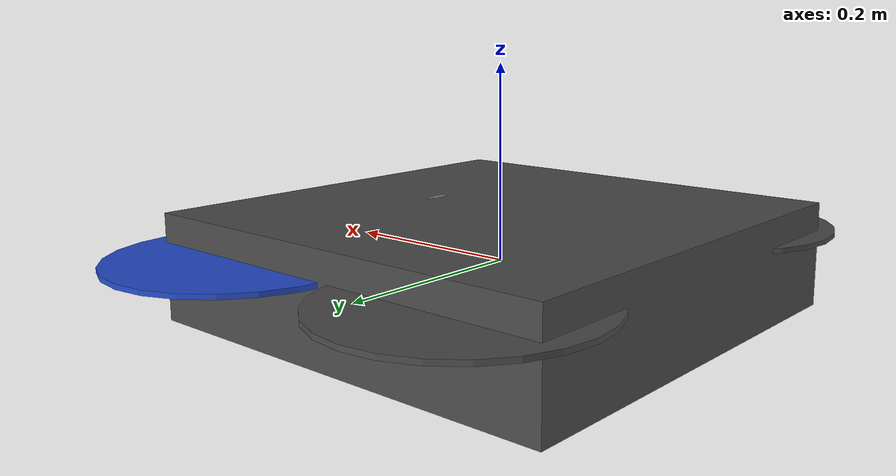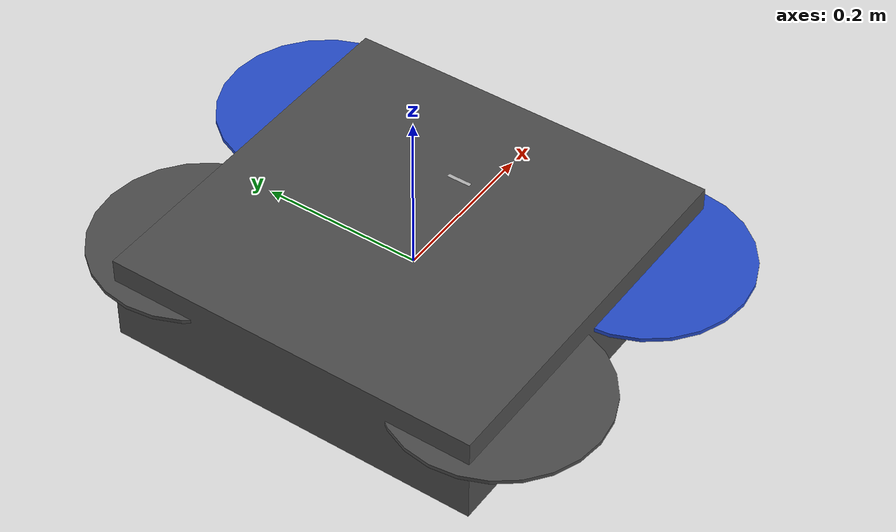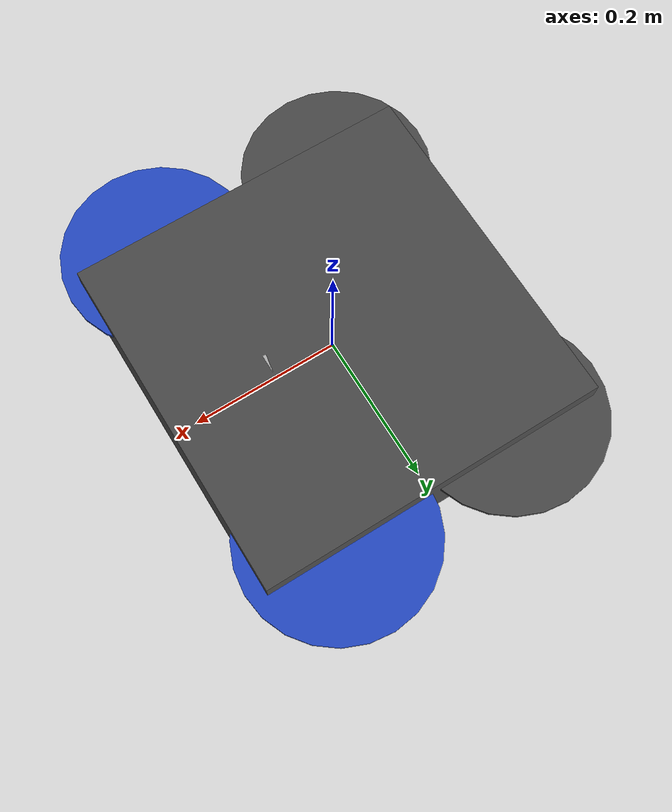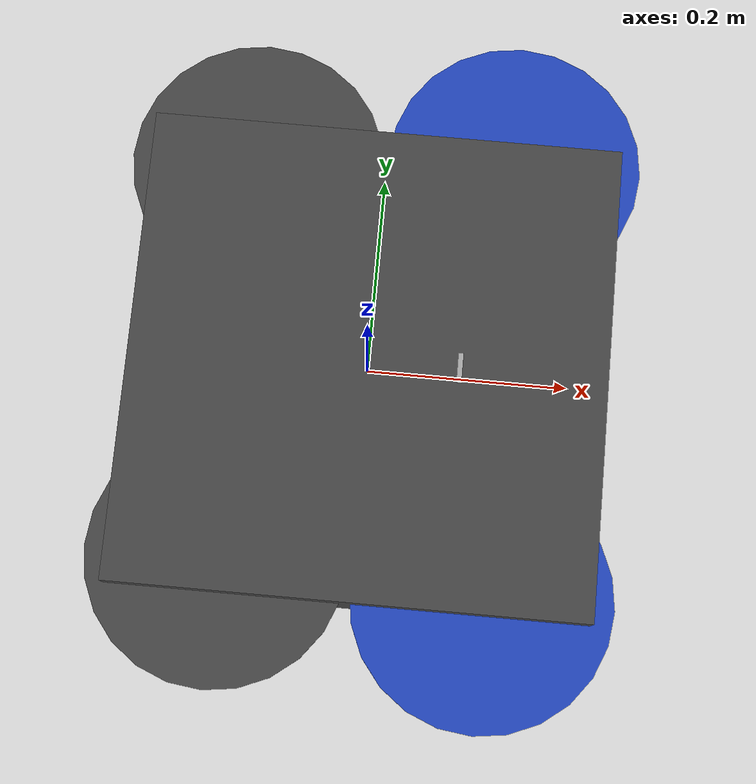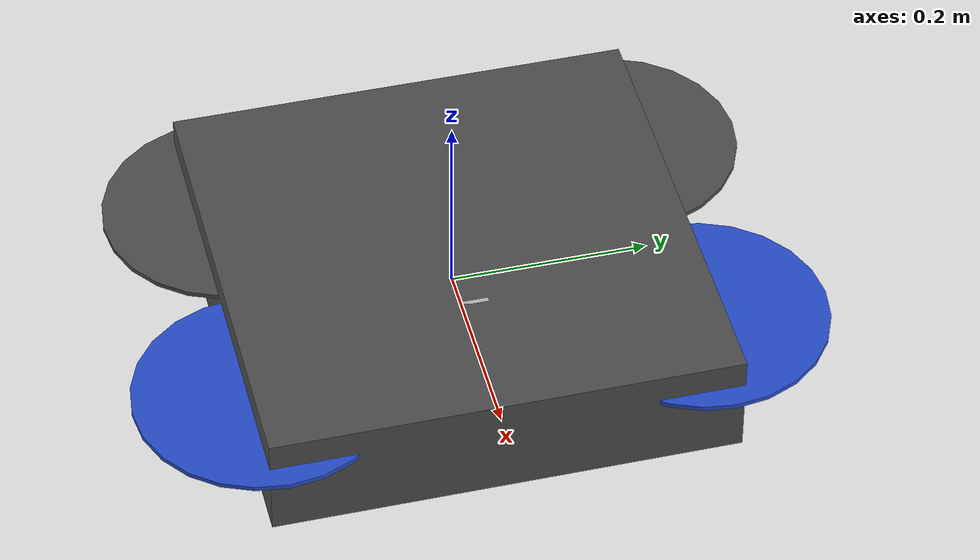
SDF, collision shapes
<sdf version='1.6'>
  <model name='iris'>
    <link name='base_link'>
      <pose frame=''>0 0 0 0 -0 0</pose>
      <inertial>
        <pose frame=''>0 0 0 0 -0 0</pose>
        <mass>1.5</mass>
        <inertia>
          <ixx>0.0347563</ixx>
          <ixy>0</ixy>
          <ixz>0</ixz>
          <iyy>0.0458929</iyy>
          <iyz>0</iyz>
          <izz>0.0977</izz>
        </inertia>
      </inertial>
      <collision name='base_link_inertia_collision'>
        <pose frame=''>0 0 0 0 -0 0</pose>
        <geometry>
          <box>
            <size>0.47 0.47 0.11</size>
          </box>
        </geometry>
        <surface>
          <contact>
            <ode>
              <min_depth>0.001</min_depth>
              <max_vel>0</max_vel>
            </ode>
          </contact>
          <friction>
            <ode/>
          </friction>
        </surface>
      </collision>
      <visual name='base_link_inertia_visual'>
        <pose frame=''>0 0 0 0 -0 0</pose>
        <geometry>
          <mesh>
            <scale>1 1 1</scale>
            <uri>model://rotors_description/meshes/iris.stl</uri>
          </mesh>
        </geometry>
        <material>
          <script>
            <name>Gazebo/DarkGrey</name>
            <uri>file://media/materials/scripts/gazebo.material</uri>
          </script>
        </material>
      </visual>
      <gravity>1</gravity>
      <velocity_decay/>
    </link>
    <link name='/imu_link'>
      <pose frame=''>0 0 0 0 -0 0</pose>
      <inertial>
        <pose frame=''>0 0 0 0 -0 0</pose>
        <mass>0.015</mass>
        <inertia>
          <ixx>1e-05</ixx>
          <ixy>0</ixy>
          <ixz>0</ixz>
          <iyy>1e-05</iyy>
          <iyz>0</iyz>
          <izz>1e-05</izz>
        </inertia>
      </inertial>
    </link>
    <joint name='/imu_joint' type='revolute'>
      <child>/imu_link</child>
      <parent>base_link</parent>
      <axis>
        <xyz>1 0 0</xyz>
        <limit>
          <lower>0</lower>
          <upper>0</upper>
          <effort>0</effort>
          <velocity>0</velocity>
        </limit>
        <dynamics>
          <spring_reference>0</spring_reference>
          <spring_stiffness>0</spring_stiffness>
        </dynamics>
        <use_parent_model_frame>1</use_parent_model_frame>
      </axis>
    </joint>
    <link name='rotor_0'>
      <pose frame=''>0.13 -0.22 0.023 0 -0 0</pose>
      <inertial>
        <pose frame=''>0 0 0 0 -0 0</pose>
        <mass>0.005</mass>
        <inertia>
          <ixx>9.75e-07</ixx>
          <ixy>0</ixy>
          <ixz>0</ixz>
          <iyy>0.000273104</iyy>
          <iyz>0</iyz>
          <izz>0.000274004</izz>
        </inertia>
      </inertial>
      <collision name='rotor_0_collision'>
        <pose frame=''>0 0 0 0 -0 0</pose>
        <geometry>
          <cylinder>
            <length>0.005</length>
            <radius>0.128</radius>
          </cylinder>
        </geometry>
        <surface>
          <contact>
            <ode/>
          </contact>
          <friction>
            <ode/>
          </friction>
        </surface>
      </collision>
      <visual name='rotor_0_visual'>
        <pose frame=''>0 0 0 0 -0 0</pose>
        <geometry>
          <mesh>
            <scale>1 1 1</scale>
            <uri>model://rotors_description/meshes/iris_prop_ccw.dae</uri>
          </mesh>
        </geometry>
        <material>
          <script>
            <name>Gazebo/Blue</name>
            <uri>file://media/materials/scripts/gazebo.material</uri>
          </script>
        </material>
      </visual>
      <gravity>1</gravity>
      <velocity_decay/>
    </link>
    <joint name='rotor_0_joint' type='revolute'>
      <child>rotor_0</child>
      <parent>base_link</parent>
      <axis>
        <xyz>0 0 1</xyz>
        <limit>
          <lower>-1e+16</lower>
          <upper>1e+16</upper>
        </limit>
        <dynamics>
          <spring_reference>0</spring_reference>
          <spring_stiffness>0</spring_stiffness>
        </dynamics>
        <use_parent_model_frame>1</use_parent_model_frame>
      </axis>
    </joint>
    <link name='rotor_1'>
      <pose frame=''>-0.13 0.2 0.023 0 -0 0</pose>
      <inertial>
        <pose frame=''>0 0 0 0 -0 0</pose>
        <mass>0.005</mass>
        <inertia>
          <ixx>9.75e-07</ixx>
          <ixy>0</ixy>
          <ixz>0</ixz>
          <iyy>0.000273104</iyy>
          <iyz>0</iyz>
          <izz>0.000274004</izz>
        </inertia>
      </inertial>
      <collision name='rotor_1_collision'>
        <pose frame=''>0 0 0 0 -0 0</pose>
        <geometry>
          <cylinder>
            <length>0.005</length>
            <radius>0.128</radius>
          </cylinder>
        </geometry>
        <surface>
          <contact>
            <ode/>
          </contact>
          <friction>
            <ode/>
          </friction>
        </surface>
      </collision>
      <visual name='rotor_1_visual'>
        <pose frame=''>0 0 0 0 -0 0</pose>
        <geometry>
          <mesh>
            <scale>1 1 1</scale>
            <uri>model://rotors_description/meshes/iris_prop_ccw.dae</uri>
          </mesh>
        </geometry>
        <material>
          <script>
            <name>Gazebo/DarkGrey</name>
            <uri>file://media/materials/scripts/gazebo.material</uri>
          </script>
        </material>
      </visual>
      <gravity>1</gravity>
      <velocity_decay/>
    </link>
    <joint name='rotor_1_joint' type='revolute'>
      <child>rotor_1</child>
      <parent>base_link</parent>
      <axis>
        <xyz>0 0 1</xyz>
        <limit>
          <lower>-1e+16</lower>
          <upper>1e+16</upper>
        </limit>
        <dynamics>
          <spring_reference>0</spring_reference>
          <spring_stiffness>0</spring_stiffness>
        </dynamics>
        <use_parent_model_frame>1</use_parent_model_frame>
      </axis>
    </joint>
    <link name='rotor_2'>
      <pose frame=''>0.13 0.22 0.023 0 -0 0</pose>
      <inertial>
        <pose frame=''>0 0 0 0 -0 0</pose>
        <mass>0.005</mass>
        <inertia>
          <ixx>9.75e-07</ixx>
          <ixy>0</ixy>
          <ixz>0</ixz>
          <iyy>0.000273104</iyy>
          <iyz>0</iyz>
          <izz>0.000274004</izz>
        </inertia>
      </inertial>
      <collision name='rotor_2_collision'>
        <pose frame=''>0 0 0 0 -0 0</pose>
        <geometry>
          <cylinder>
            <length>0.005</length>
            <radius>0.128</radius>
          </cylinder>
        </geometry>
        <surface>
          <contact>
            <ode/>
          </contact>
          <friction>
            <ode/>
          </friction>
        </surface>
      </collision>
      <visual name='rotor_2_visual'>
        <pose frame=''>0 0 0 0 -0 0</pose>
        <geometry>
          <mesh>
            <scale>1 1 1</scale>
            <uri>model://rotors_description/meshes/iris_prop_cw.dae</uri>
          </mesh>
        </geometry>
        <material>
          <script>
            <name>Gazebo/Blue</name>
            <uri>file://media/materials/scripts/gazebo.material</uri>
          </script>
        </material>
      </visual>
      <gravity>1</gravity>
      <velocity_decay/>
    </link>
    <joint name='rotor_2_joint' type='revolute'>
      <child>rotor_2</child>
      <parent>base_link</parent>
      <axis>
        <xyz>0 0 1</xyz>
        <limit>
          <lower>-1e+16</lower>
          <upper>1e+16</upper>
        </limit>
        <dynamics>
          <spring_reference>0</spring_reference>
          <spring_stiffness>0</spring_stiffness>
        </dynamics>
        <use_parent_model_frame>1</use_parent_model_frame>
      </axis>
    </joint>
    <link name='rotor_3'>
      <pose frame=''>-0.13 -0.2 0.023 0 -0 0</pose>
      <inertial>
        <pose frame=''>0 0 0 0 -0 0</pose>
        <mass>0.005</mass>
        <inertia>
          <ixx>9.75e-07</ixx>
          <ixy>0</ixy>
          <ixz>0</ixz>
          <iyy>0.000273104</iyy>
          <iyz>0</iyz>
          <izz>0.000274004</izz>
        </inertia>
      </inertial>
      <collision name='rotor_3_collision'>
        <pose frame=''>0 0 0 0 -0 0</pose>
        <geometry>
          <cylinder>
            <length>0.005</length>
            <radius>0.128</radius>
          </cylinder>
        </geometry>
        <surface>
          <contact>
            <ode/>
          </contact>
          <friction>
            <ode/>
          </friction>
        </surface>
      </collision>
      <visual name='rotor_3_visual'>
        <pose frame=''>0 0 0 0 -0 0</pose>
        <geometry>
          <mesh>
            <scale>1 1 1</scale>
            <uri>model://rotors_description/meshes/iris_prop_cw.dae</uri>
          </mesh>
        </geometry>
        <material>
          <script>
            <name>Gazebo/DarkGrey</name>
            <uri>file://media/materials/scripts/gazebo.material</uri>
          </script>
        </material>
      </visual>
      <gravity>1</gravity>
      <velocity_decay/>
    </link>
    <joint name='rotor_3_joint' type='revolute'>
      <child>rotor_3</child>
      <parent>base_link</parent>
      <axis>
        <xyz>0 0 1</xyz>
        <limit>
          <lower>-1e+16</lower>
          <upper>1e+16</upper>
        </limit>
        <dynamics>
          <spring_reference>0</spring_reference>
          <spring_stiffness>0</spring_stiffness>
        </dynamics>
        <use_parent_model_frame>1</use_parent_model_frame>
      </axis>
    </joint>
    <plugin name='rosbag' filename='libgazebo_multirotor_base_plugin.so'>
      <robotNamespace/>
      <linkName>base_link</linkName>
      <rotorVelocitySlowdownSim>10</rotorVelocitySlowdownSim>
    </plugin>
    <plugin name='front_right_motor_model' filename='libgazebo_motor_model.so'>
      <robotNamespace/>
      <jointName>rotor_0_joint</jointName>
      <linkName>rotor_0</linkName>
      <turningDirection>ccw</turningDirection>
      <timeConstantUp>0.0125</timeConstantUp>
      <timeConstantDown>0.025</timeConstantDown>
      <maxRotVelocity>1100</maxRotVelocity>
      <motorConstant>8.54858e-06</motorConstant>
      <momentConstant>0.06</momentConstant>
      <commandSubTopic>/gazebo/command/motor_speed</commandSubTopic>
      <motorNumber>0</motorNumber>
      <rotorDragCoefficient>0.000806428</rotorDragCoefficient>
      <rollingMomentCoefficient>1e-06</rollingMomentCoefficient>
      <motorSpeedPubTopic>/motor_speed/0</motorSpeedPubTopic>
      <rotorVelocitySlowdownSim>10</rotorVelocitySlowdownSim>
    </plugin>
    <plugin name='back_left_motor_model' filename='libgazebo_motor_model.so'>
      <robotNamespace/>
      <jointName>rotor_1_joint</jointName>
      <linkName>rotor_1</linkName>
      <turningDirection>ccw</turningDirection>
      <timeConstantUp>0.0125</timeConstantUp>
      <timeConstantDown>0.025</timeConstantDown>
      <maxRotVelocity>1100</maxRotVelocity>
      <motorConstant>8.54858e-06</motorConstant>
      <momentConstant>0.06</momentConstant>
      <commandSubTopic>/gazebo/command/motor_speed</commandSubTopic>
      <motorNumber>1</motorNumber>
      <rotorDragCoefficient>0.000806428</rotorDragCoefficient>
      <rollingMomentCoefficient>1e-06</rollingMomentCoefficient>
      <motorSpeedPubTopic>/motor_speed/1</motorSpeedPubTopic>
      <rotorVelocitySlowdownSim>10</rotorVelocitySlowdownSim>
    </plugin>
    <plugin name='front_left_motor_model' filename='libgazebo_motor_model.so'>
      <robotNamespace/>
      <jointName>rotor_2_joint</jointName>
      <linkName>rotor_2</linkName>
      <turningDirection>cw</turningDirection>
      <timeConstantUp>0.0125</timeConstantUp>
      <timeConstantDown>0.025</timeConstantDown>
      <maxRotVelocity>1100</maxRotVelocity>
      <motorConstant>8.54858e-06</motorConstant>
      <momentConstant>0.06</momentConstant>
      <commandSubTopic>/gazebo/command/motor_speed</commandSubTopic>
      <motorNumber>2</motorNumber>
      <rotorDragCoefficient>0.000806428</rotorDragCoefficient>
      <rollingMomentCoefficient>1e-06</rollingMomentCoefficient>
      <motorSpeedPubTopic>/motor_speed/2</motorSpeedPubTopic>
      <rotorVelocitySlowdownSim>10</rotorVelocitySlowdownSim>
    </plugin>
    <plugin name='back_right_motor_model' filename='libgazebo_motor_model.so'>
      <robotNamespace/>
      <jointName>rotor_3_joint</jointName>
      <linkName>rotor_3</linkName>
      <turningDirection>cw</turningDirection>
      <timeConstantUp>0.0125</timeConstantUp>
      <timeConstantDown>0.025</timeConstantDown>
      <maxRotVelocity>1100</maxRotVelocity>
      <motorConstant>8.54858e-06</motorConstant>
      <momentConstant>0.06</momentConstant>
      <commandSubTopic>/gazebo/command/motor_speed</commandSubTopic>
      <motorNumber>3</motorNumber>
      <rotorDragCoefficient>0.000806428</rotorDragCoefficient>
      <rollingMomentCoefficient>1e-06</rollingMomentCoefficient>
      <motorSpeedPubTopic>/motor_speed/3</motorSpeedPubTopic>
      <rotorVelocitySlowdownSim>10</rotorVelocitySlowdownSim>
    </plugin>
    <plugin name='gps_plugin' filename='libgazebo_gps_plugin.so'>
      <robotNamespace/>
      <gpsNoise>true</gpsNoise>
    </plugin>
    <plugin name='mavlink_interface' filename='libgazebo_mavlink_interface.so'>
      <robotNamespace/>
      <imuSubTopic>/imu</imuSubTopic>
      <gpsSubTopic>/gps</gpsSubTopic>
      <mavlink_addr>INADDR_ANY</mavlink_addr>
      <mavlink_udp_port>14560</mavlink_udp_port>
      <mavlink_tcp_port>4560</mavlink_tcp_port>
      <serialEnabled>false</serialEnabled>
      <serialDevice>/dev/ttyACM0</serialDevice>
      <baudRate>921600</baudRate>
      <qgc_addr>INADDR_ANY</qgc_addr>
      <qgc_udp_port>14550</qgc_udp_port>
      <hil_mode>false</hil_mode>
      <hil_state_level>false</hil_state_level>
      <vehicle_is_tailsitter>false</vehicle_is_tailsitter>
      <send_vision_estimation>true</send_vision_estimation>
      <send_odometry>false</send_odometry>
      <enable_lockstep>true</enable_lockstep>
      <use_tcp>true</use_tcp>
      <motorSpeedCommandPubTopic>/gazebo/command/motor_speed</motorSpeedCommandPubTopic>
      <control_channels>
        <channel name='rotor1'>
          <input_index>0</input_index>
          <input_offset>0</input_offset>
          <input_scaling>1000</input_scaling>
          <zero_position_disarmed>0</zero_position_disarmed>
          <zero_position_armed>100</zero_position_armed>
          <joint_control_type>velocity</joint_control_type>
        </channel>
        <channel name='rotor2'>
          <input_index>1</input_index>
          <input_offset>0</input_offset>
          <input_scaling>1000</input_scaling>
          <zero_position_disarmed>0</zero_position_disarmed>
          <zero_position_armed>100</zero_position_armed>
          <joint_control_type>velocity</joint_control_type>
        </channel>
        <channel name='rotor3'>
          <input_index>2</input_index>
          <input_offset>0</input_offset>
          <input_scaling>1000</input_scaling>
          <zero_position_disarmed>0</zero_position_disarmed>
          <zero_position_armed>100</zero_position_armed>
          <joint_control_type>velocity</joint_control_type>
        </channel>
        <channel name='rotor4'>
          <input_index>3</input_index>
          <input_offset>0</input_offset>
          <input_scaling>1000</input_scaling>
          <zero_position_disarmed>0</zero_position_disarmed>
          <zero_position_armed>100</zero_position_armed>
          <joint_control_type>velocity</joint_control_type>
        </channel>
        <channel name='rotor5'>
          <input_index>4</input_index>
          <input_offset>1</input_offset>
          <input_scaling>324.6</input_scaling>
          <zero_position_disarmed>0</zero_position_disarmed>
          <zero_position_armed>0</zero_position_armed>
          <joint_control_type>velocity</joint_control_type>
          <joint_control_pid>
            <p>0.1</p>
            <i>0</i>
            <d>0</d>
            <iMax>0.0</iMax>
            <iMin>0.0</iMin>
            <cmdMax>2</cmdMax>
            <cmdMin>-2</cmdMin>
          </joint_control_pid>
          <joint_name>zephyr_delta_wing::propeller_joint</joint_name>
        </channel>
        <channel name='rotor6'>
          <input_index>5</input_index>
          <input_offset>0</input_offset>
          <input_scaling>0.524</input_scaling>
          <zero_position_disarmed>0</zero_position_disarmed>
          <zero_position_armed>0</zero_position_armed>
          <joint_control_type>position</joint_control_type>
          <joint_name>zephyr_delta_wing::flap_left_joint</joint_name>
          <joint_control_pid>
            <p>10.0</p>
            <i>0</i>
            <d>0</d>
            <iMax>0</iMax>
            <iMin>0</iMin>
            <cmdMax>20</cmdMax>
            <cmdMin>-20</cmdMin>
          </joint_control_pid>
        </channel>
        <channel name='rotor7'>
          <input_index>6</input_index>
          <input_offset>0</input_offset>
          <input_scaling>0.524</input_scaling>
          <zero_position_disarmed>0</zero_position_disarmed>
          <zero_position_armed>0</zero_position_armed>
          <joint_control_type>position</joint_control_type>
          <joint_name>zephyr_delta_wing::flap_right_joint</joint_name>
          <joint_control_pid>
            <p>10.0</p>
            <i>0</i>
            <d>0</d>
            <iMax>0</iMax>
            <iMin>0</iMin>
            <cmdMax>20</cmdMax>
            <cmdMin>-20</cmdMin>
          </joint_control_pid>
        </channel>
        <channel name='rotor8'>
          <input_index>7</input_index>
          <input_offset>0</input_offset>
          <input_scaling>0.524</input_scaling>
          <zero_position_disarmed>0</zero_position_disarmed>
          <zero_position_armed>0</zero_position_armed>
          <joint_control_type>position</joint_control_type>
        </channel>
      </control_channels>
    </plugin>
    <static>0</static>
    <plugin name='rotors_gazebo_imu_plugin' filename='libgazebo_imu_plugin.so'>
      <robotNamespace/>
      <linkName>/imu_link</linkName>
      <imuTopic>/imu</imuTopic>
      <gyroscopeNoiseDensity>0.0003394</gyroscopeNoiseDensity>
      <gyroscopeRandomWalk>3.8785e-05</gyroscopeRandomWalk>
      <gyroscopeBiasCorrelationTime>1000.0</gyroscopeBiasCorrelationTime>
      <gyroscopeTurnOnBiasSigma>0.0087</gyroscopeTurnOnBiasSigma>
      <accelerometerNoiseDensity>0.004</accelerometerNoiseDensity>
      <accelerometerRandomWalk>0.006</accelerometerRandomWalk>
      <accelerometerBiasCorrelationTime>300.0</accelerometerBiasCorrelationTime>
      <accelerometerTurnOnBiasSigma>0.196</accelerometerTurnOnBiasSigma>
    </plugin>
    <include>
      <uri>model://camera_ros_down</uri>
      <pose>0 0 -0.04 0 1.5708 0</pose>
    </include>
    <joint name="camera_down_joint" type="fixed">
      <child>camera_ros_down::link</child>
      <parent>base_link</parent>
    </joint>
    <include>
      <uri>model://camera_ros</uri>
      <pose>0.09 0 0.04 0 0 0</pose>
    </include>
    <joint name="camera_joint" type="fixed">
      <child>camera_ros::link</child>
      <parent>base_link</parent>
    </joint>
  </model>
</sdf>

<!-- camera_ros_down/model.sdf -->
<sdf version="1.0">
  <model name="camera_ros_down">
    <pose>0 0 0 0 0 0</pose>
    <link name="link">
      <inertial>
        <mass>0.003</mass>
        <inertia>
          <ixx>0.000166667</ixx>
          <iyy>0.000166667</iyy>
          <izz>0.000166667</izz>
        </inertia>
      </inertial>
      <collision name="collision">
        <geometry>
          <box>
            <size>0.005 0.3 0.3</size>
          </box>
        </geometry>
      </collision>
      <visual name="visual">
        <geometry>
          <box>
            <size>0.005 0.03 0.03</size>
          </box>
        </geometry>
      </visual>
      <sensor name="camera_ros_down" type="camera">
        <camera>
          <horizontal_fov>1.047</horizontal_fov>
          <image>
            <width>320</width>
            <height>240</height>
          </image>
          <clip>
            <near>0.1</near>
            <far>100</far>
          </clip>
        </camera>
        <plugin name="camera_controller" filename="libgazebo_ros_camera.so">
          <alwaysOn>true</alwaysOn>
          <updateRate>0.0</updateRate>
          <cameraName>camera_down</cameraName>
          <imageTopicName>image_raw</imageTopicName>
          <cameraInfoTopicName>camera_info</cameraInfoTopicName>
          <frameName>camera_link</frameName>
          <hackBaseline>0.07</hackBaseline>
          <distortionK1>0.0</distortionK1>
          <distortionK2>0.0</distortionK2>
          <distortionK3>0.0</distortionK3>
          <distortionT1>0.0</distortionT1>
          <distortionT2>0.0</distortionT2>
        </plugin>
        <always_on>1</always_on>
        <update_rate>30</update_rate>
        <visualize>true</visualize>

      </sensor>
    </link>
  </model>
</sdf>

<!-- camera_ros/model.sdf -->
<sdf version="1.0">
  <model name="camera_ros">
    <pose>0 0 0 0 0 0</pose>
    <link name="link">
      <inertial>
        <mass>0.004</mass>
        <inertia>
          <ixx>0.000166667</ixx>
          <iyy>0.000166667</iyy>
          <izz>0.000166667</izz>
        </inertia>
      </inertial>
      <collision name="collision">
        <geometry>
          <box>
            <size>0.005 0.03 0.03</size>
          </box>
        </geometry>
      </collision>
      <visual name="visual">
        <geometry>
          <box>
            <size>0.005 0.03 0.03</size>
          </box>
        </geometry>
      </visual>
      <sensor name="camera_ros" type="camera">
        <camera>
          <horizontal_fov>1.047</horizontal_fov>
          <image>
            <width>320</width>
            <height>240</height>
          </image>
          <clip>
            <near>0.1</near>
            <far>100</far>
          </clip>
        </camera>
        <plugin name="camera_controller" filename="libgazebo_ros_camera.so">
          <alwaysOn>true</alwaysOn>
          <updateRate>0.0</updateRate>
          <cameraName>camera1</cameraName>
          <imageTopicName>image_raw</imageTopicName>
          <cameraInfoTopicName>camera_info</cameraInfoTopicName>
          <frameName>camera_link</frameName>
          <hackBaseline>0.07</hackBaseline>
          <distortionK1>0.0</distortionK1>
          <distortionK2>0.0</distortionK2>
          <distortionK3>0.0</distortionK3>
          <distortionT1>0.0</distortionT1>
          <distortionT2>0.0</distortionT2>
        </plugin>
        <always_on>1</always_on>
        <update_rate>30</update_rate>
        <visualize>true</visualize>

      </sensor>
    </link>
  </model>
</sdf>
